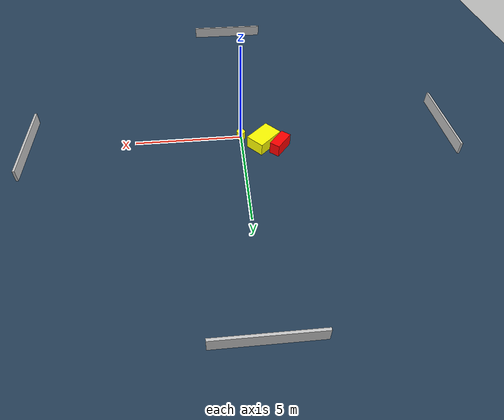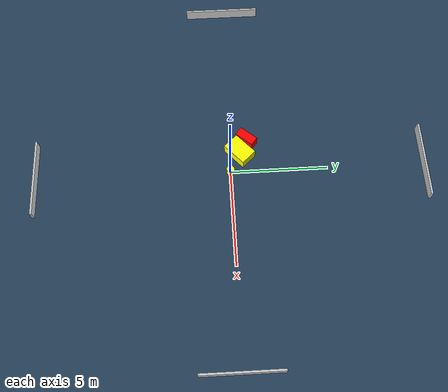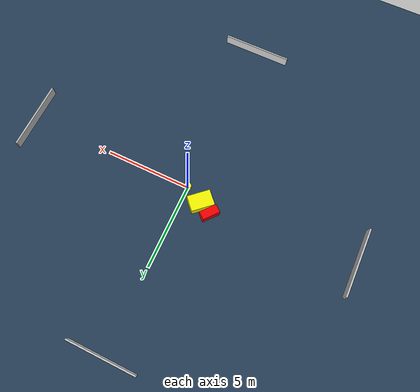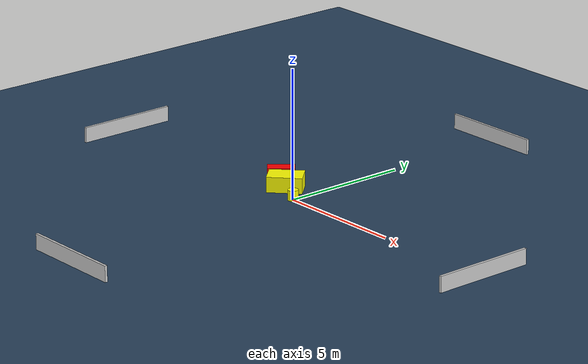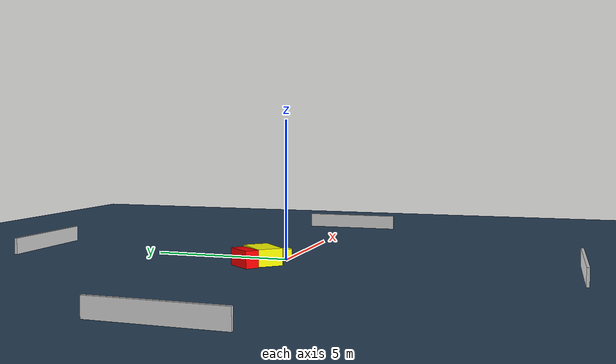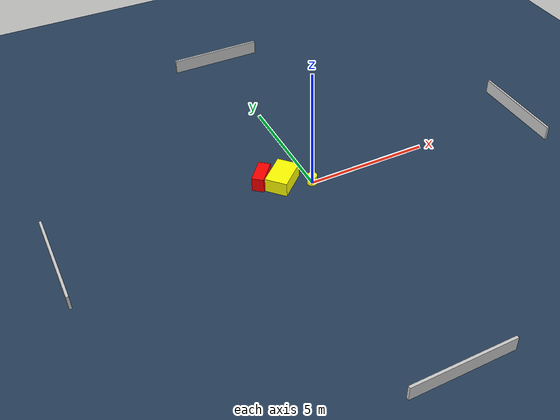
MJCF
<?xml version="1.0" ?>
<mujoco model="generated_environment">
  <option timestep="0.01" integrator="RK4" cone="elliptic"/>
  <default>
    <geom density="1"/>
  </default>
  <asset>
    <texture builtin="gradient" height="3072" name="skybox" rgb1="0.3 0.5 0.7" rgb2="0 0 0" type="skybox" width="512"/>
    <texture builtin="checker" height="300" name="groundplane" rgb1="0.2 0.3 0.4" rgb2="0.1 0.2 0.3" type="2d" width="300"/>
    <material name="groundplane" reflectance="0.2" texrepeat="5 5" texture="groundplane"/>
  </asset>
  <worldbody>
    <light dir="0 0 -1" directional="true" pos="0 0 1.5"/>
    <geom condim="3" friction="0.5 0.005 0.001" material="groundplane" name="floor" pos="0 0 0" size="0 0 0.05" type="plane"/>
    <body name="walls">
      <geom name="wall_1" condim="4" pos="-10.0 0.0 0.3" rgba="0.800000011920929 0.800000011920929 0.800000011920929 1.0" size="0.05 2.0 0.3" type="box"/>
      <geom name="wall_2" condim="4" pos="10.0 0.0 0.3" rgba="0.800000011920929 0.800000011920929 0.800000011920929 1.0" size="0.05 2.0 0.3" type="box"/>
      <geom name="wall_3" condim="4" pos="0.0 -10.0 0.3" rgba="0.800000011920929 0.800000011920929 0.800000011920929 1.0" size="2.0 0.05 0.3" type="box"/>
      <geom name="wall_4" condim="4" pos="0.0 10.0 0.3" rgba="0.800000011920929 0.800000011920929 0.800000011920929 1.0" size="2.0 0.05 0.3" type="box"/>
    </body>
    <body name="robot">
      <joint name="joint_x" type="slide" pos="0 0 0" axis="1 0 0"/>
      <joint name="joint_y" type="slide" pos="0 0 0" axis="0 1 0"/>
      <geom name="robot" type="cylinder" pos="0.0 0.0 0.2" size="0.2 0.2 0.0" mass="5.0" friction="1.0 0.005 0.0001" condim="4" rgba="1.0 1.0 0.0 1.0"/>
    </body>
    <body name="obstacle_1_movable">
      <geom name="obstacle_1_movable" condim="4" pos="-1.0388936669252802 0.5265086942063356 0.3" euler="0 0 132.66899995150283" friction="0.0 0.005 0.001" rgba="1.0 1.0 0.0 1.0" size="0.45107164759319973 0.6710118408790007 0.3" type="box" mass="0.1"/>
      <joint type="free"/>
    </body>
    <body name="obstacle_2_static">
      <geom name="obstacle_2_static" condim="4" pos="-1.760484607455213 0.9148216126136344 0.3" euler="0 0 230.28174241273487" friction="0.0 0.005 0.001" rgba="1.0 0.0 0.0 1.0" size="0.5151885294228776 0.2412724701944578 0.3" type="box"/>
    </body>
  </worldbody>
  <actuator>
    <motor name="actuator_x" joint="joint_x" gear="1" ctrlrange="-1 1"/>
    <motor name="actuator_y" joint="joint_y" gear="1" ctrlrange="-1 1"/>
  </actuator>
</mujoco>
